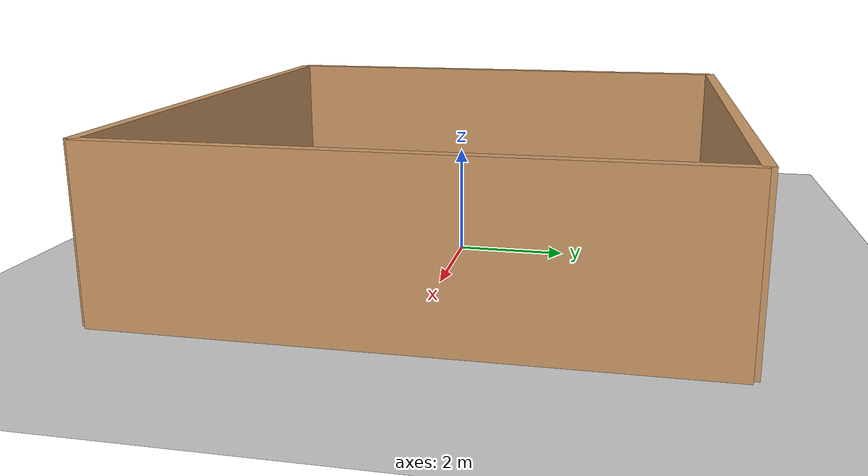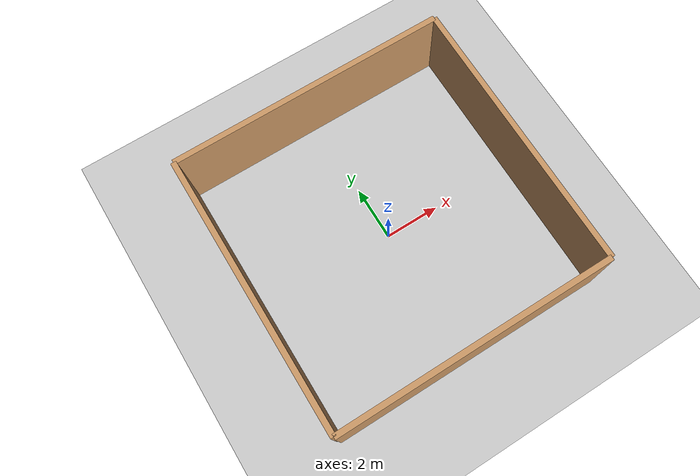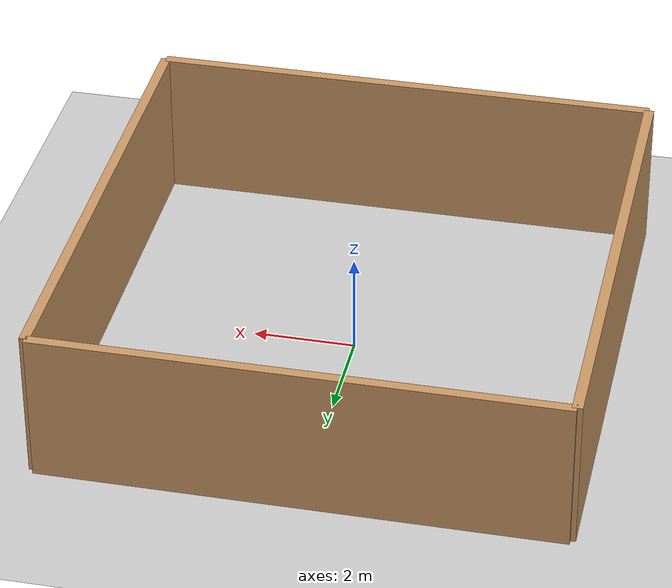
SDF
<?xml version="1.0"?>
<sdf version="1.6">
  <world name="first_world">
    <plugin
      filename="gz-sim-physics-system"
      name="gz::sim::systems::Physics">
    </plugin>

    <plugin
      filename="gz-sim-user-commands-system"
      name="gz::sim::systems::UserCommands">
    </plugin>

    <plugin
      filename="gz-sim-scene-broadcaster-system"
      name="gz::sim::systems::SceneBroadcaster">
    </plugin>

    <plugin
      filename="gz-sim-sensors-system"
      name="gz::sim::systems::Sensors">
      <render_engine>ogre2</render_engine>
    </plugin>

    <light type="directional" name="sun">
        <cast_shadows>true</cast_shadows>
        <pose>0 0 10 0 0 0</pose>
        <diffuse>0.8 0.8 0.8 1</diffuse>
        <specular>0.2 0.2 0.2 1</specular>
        <attenuation>
            <range>1000</range>
            <constant>0.9</constant>
            <linear>0.01</linear>
            <quadratic>0.001</quadratic>
        </attenuation>
        <direction>-0.5 0.1 -0.9</direction>
    </light>

    <model name="ground_plane">
        <static>true</static>
        <link name="link">
            <collision name="collision">
                <geometry>
                    <plane>
                        <normal>0 0 1</normal>
                        <size>100 100</size>
                    </plane>
                </geometry>
                <surface>
                    <friction>
                        <ode>
                            <mu>200</mu>
                            <mu2>100</mu2>
                        </ode>
                    </friction>
                </surface>
            </collision>
            <visual name="visual">
                <cast_shadows>false</cast_shadows>
                <geometry>
                    <plane>
                        <normal>0 0 1</normal>
                        <size>100 100</size>
                    </plane>
                </geometry>
                <material>
                    <script>
                        <uri>file://media/materials/scripts/gazebo.material</uri>
                        <name>Gazebo/Grey</name>
                    </script>
                </material>
            </visual>
        </link>
    </model>

    <model name="rover_building">
        <static>1</static>
        <include>
            <pose>0 0 0 0 0 0</pose>
            <uri>model://simple_building</uri>
        </include>
    </model>

  </world>
</sdf>

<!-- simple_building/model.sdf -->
<sdf version="1.7">
  <model name="simple_building">
    <static>true</static>
    <link name="building_link">
      <collision name="back_wall_collision">
        <pose>0 -5 1.5 0 0 0</pose>
        <geometry>
          <box>
            <size>10 0.2 3</size>
          </box>
        </geometry>
      </collision>
      <visual name="back_wall_visual">
        <pose>0 -5 1.5 0 0 0</pose>
        <geometry>
          <box>
            <size>10 0.2 3</size>
          </box>
        </geometry>
        <material>
          <diffuse>0.8 0.6 0.4 1.0</diffuse> </material>
      </visual>

      <collision name="front_wall_collision">
        <pose>0 5 1.5 0 0 0</pose>
        <geometry>
          <box>
            <size>10 0.2 3</size>
          </box>
        </geometry>
      </collision>
      <visual name="front_wall_visual">
        <pose>0 5 1.5 0 0 0</pose>
        <geometry>
          <box>
            <size>10 0.2 3</size>
          </box>
        </geometry>
        <material>
          <diffuse>0.8 0.6 0.4 1.0</diffuse>
        </material>
      </visual>

      <collision name="left_wall_collision">
        <pose>-5 0 1.5 0 0 0</pose>
        <geometry>
          <box>
            <size>0.2 10 3</size>
          </box>
        </geometry>
      </collision>
      <visual name="left_wall_visual">
        <pose>-5 0 1.5 0 0 0</pose>
        <geometry>
          <box>
            <size>0.2 10 3</size>
          </box>
        </geometry>
        <material>
          <diffuse>0.8 0.6 0.4 1.0</diffuse>
        </material>
      </visual>

      <collision name="right_wall_collision">
        <pose>5 0 1.5 0 0 0</pose>
        <geometry>
          <box>
            <size>0.2 10 3</size>
          </box>
        </geometry>
      </collision>
      <visual name="right_wall_visual">
        <pose>5 0 1.5 0 0 0</pose>
        <geometry>
          <box>
            <size>0.2 10 3</size>
          </box>
        </geometry>
        <material>
          <diffuse>0.8 0.6 0.4 1.0</diffuse>
        </material>
      </visual>

    </link>
  </model>
</sdf>
